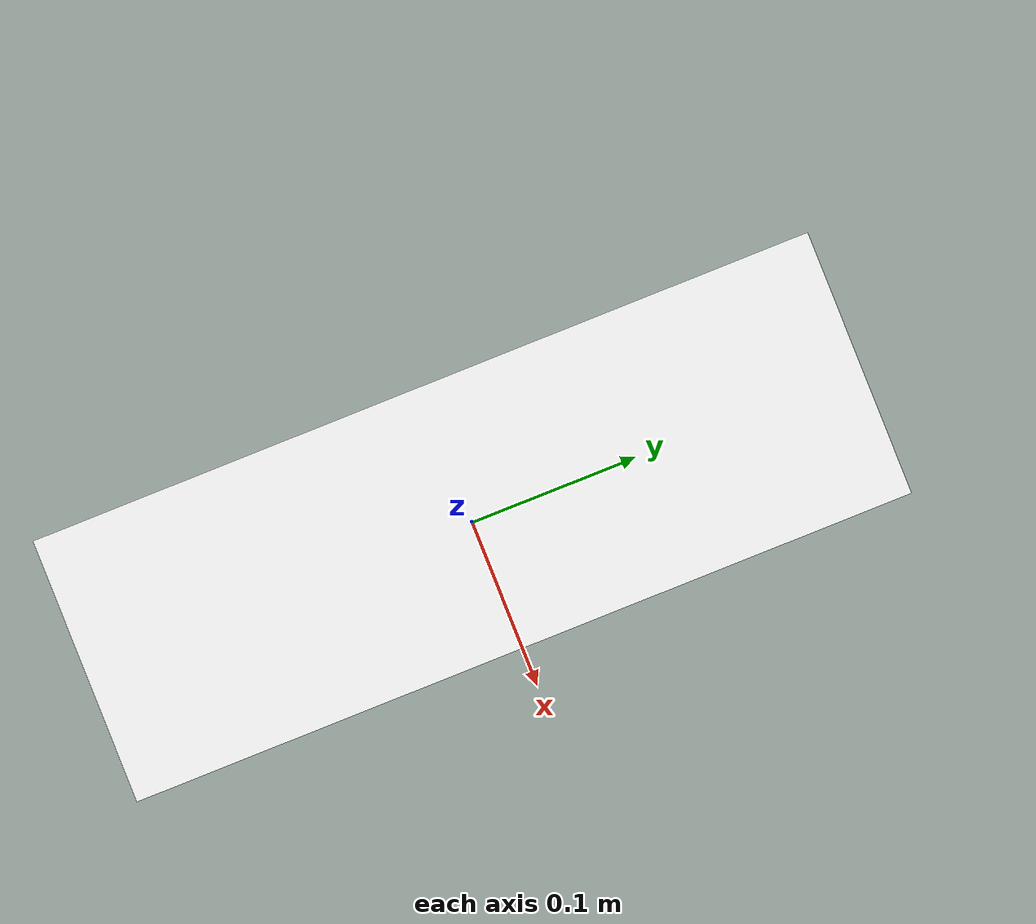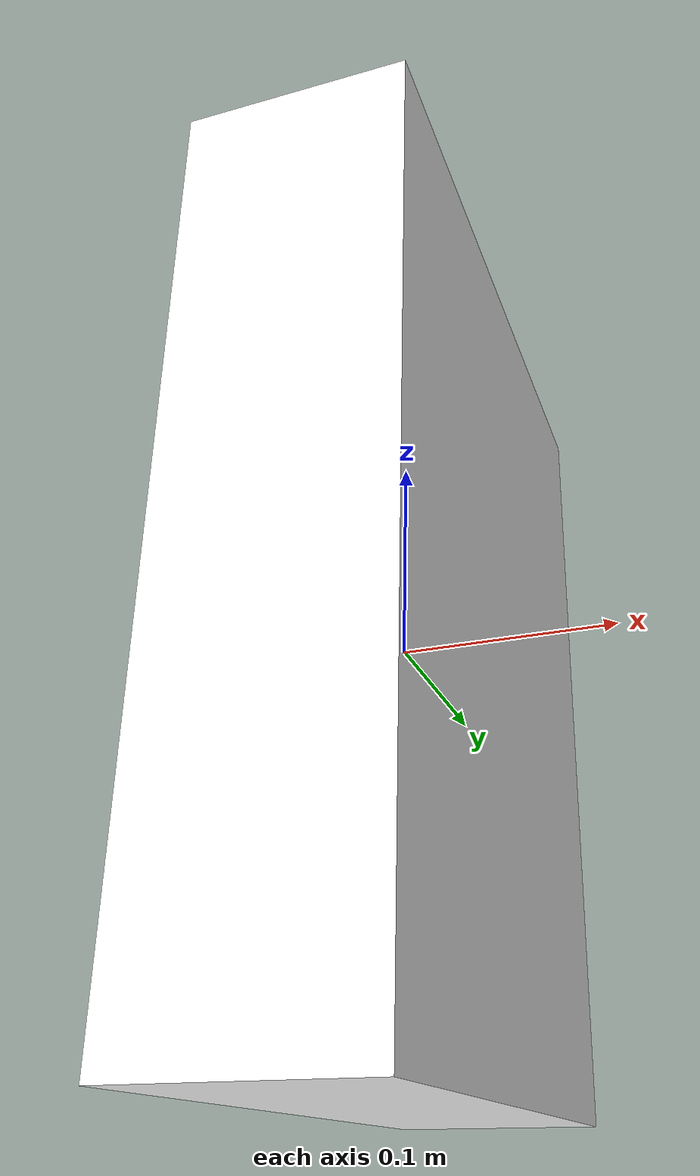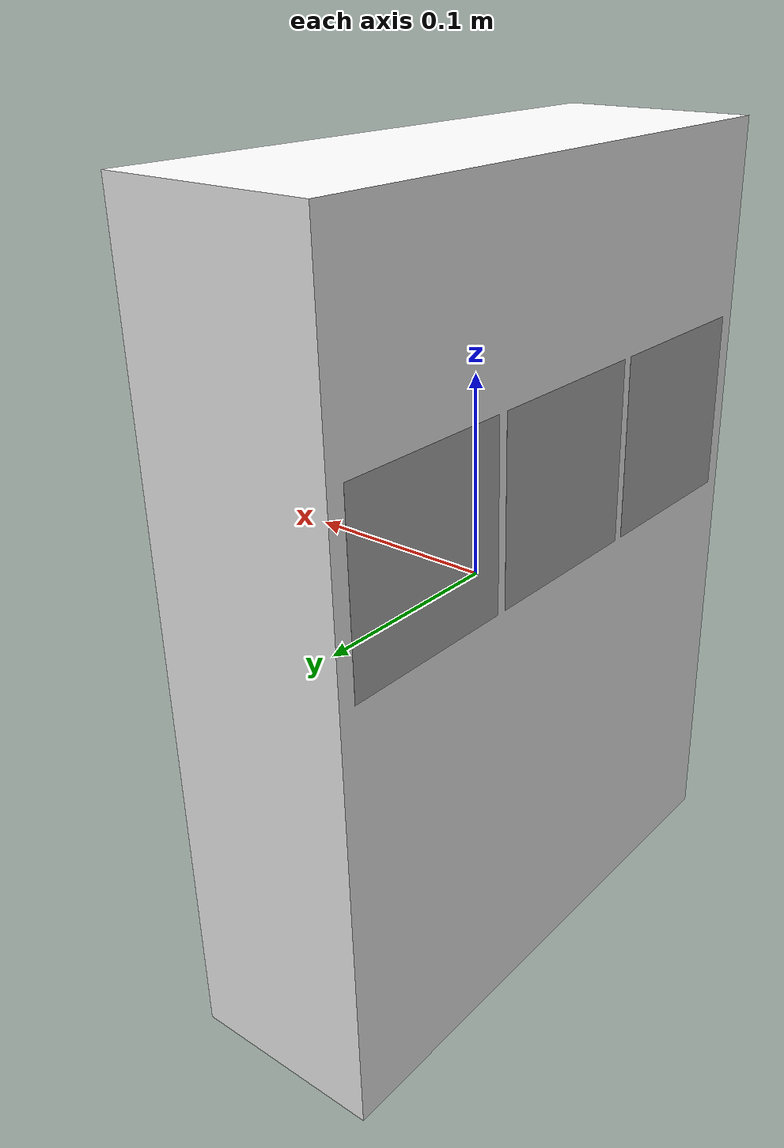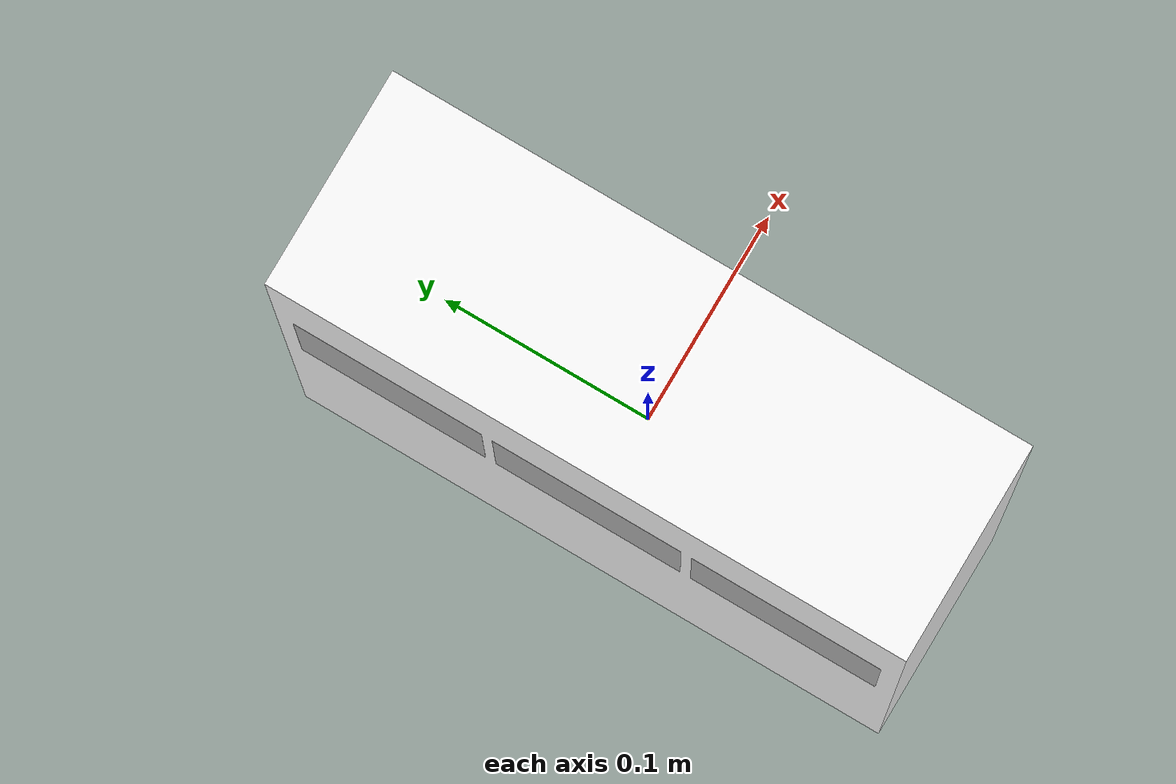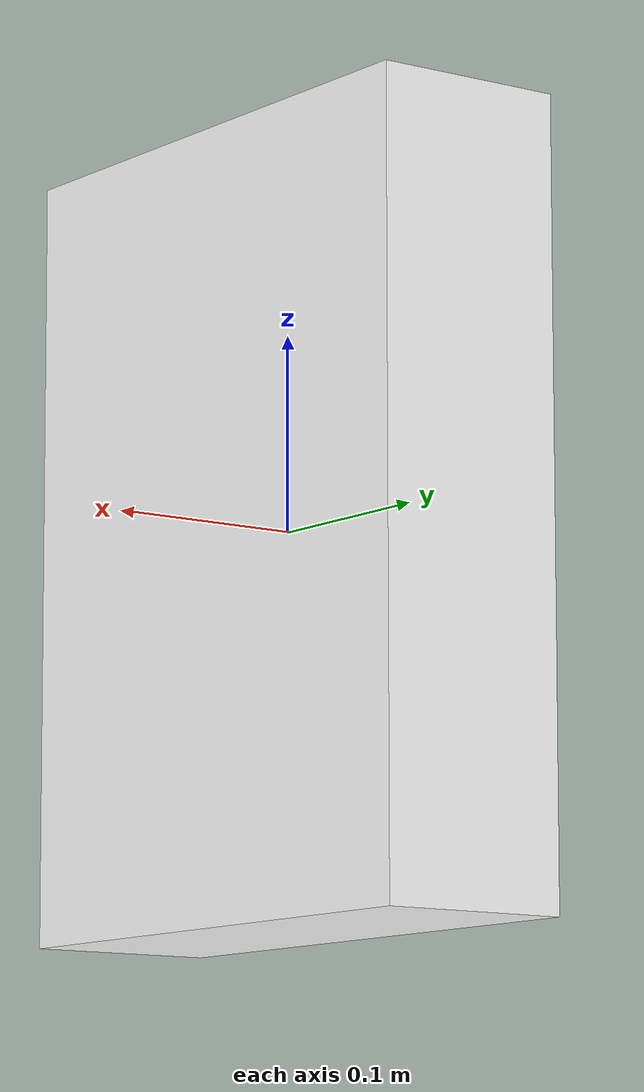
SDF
<?xml version="1.0"?>
<sdf version="1.6">
  <model name="Apriltag_box">
    <link name="link">
      <inertial>
        <pose>0 0 0 0 0 0</pose>
        <mass>1</mass>
        <inertia>
          <ixx>0.083</ixx>
          <ixy>0.0</ixy>
          <ixz>0.0</ixz>
          <iyy>0.083</iyy>
          <iyz>0.0</iyz>
          <izz>0.083</izz>
        </inertia>
      </inertial>

      <visual name="front_visual24">
        <pose>-0.05005 0.095 0.06 0 0 3.14159</pose>
        <geometry>
          <box>
            <size>0.0001 0.09 0.09</size>
          </box>
        </geometry>
        <material>
          <script>
            <uri>model://Apriltag_box/materials/scripts</uri>
            <uri>model://Apriltag_box/materials/textures</uri>
            <name>Marker24</name>
          </script>
        </material>
      </visual>

      <visual name="front_visual25">
        <pose>-0.05005 0.0 0.06 0 0 3.14159</pose>
        <geometry>
          <box>
            <size>0.0001 0.09 0.09</size>
          </box>
        </geometry>
        <material>
          <script>
            <uri>model://Apriltag_box/materials/scripts</uri>
            <uri>model://Apriltag_box/materials/textures</uri>
            <name>Marker25</name>
          </script>
        </material>
      </visual>

      <visual name="front_visual26">
        <pose>-0.05005 -0.095 0.06 0 0 3.14159</pose>
        <geometry>
          <box>
            <size>0.0001 0.09 0.09</size>
          </box>
        </geometry>
        <material>
          <script>
            <uri>model://Apriltag_box/materials/scripts</uri>
            <uri>model://Apriltag_box/materials/textures</uri>
            <name>Marker26</name>
          </script>
        </material>
      </visual>

      <!-- Hide the marker from the back -->
      <visual name="rear_visual">
        <pose>-0.00005 0 0 0 0 0</pose>
        <geometry>
          <box>
            <size>0.10 0.297 0.40</size>
          </box>
        </geometry>
        <material>
          <ambient>1 1 1 1</ambient>
          <diffuse>1 1 1 1</diffuse>
          <specular>0.1 0.1 0.1 1</specular>
          <emissive>0 0 0 0</emissive>
        </material>
      </visual>
      <collision name="collision">
        <pose>0 0 0 0 0 0</pose>
        <geometry>
          <box>
            <size>0.10 0.297 0.40</size>
          </box>
        </geometry>
      </collision>
    </link>
  </model>
</sdf>
